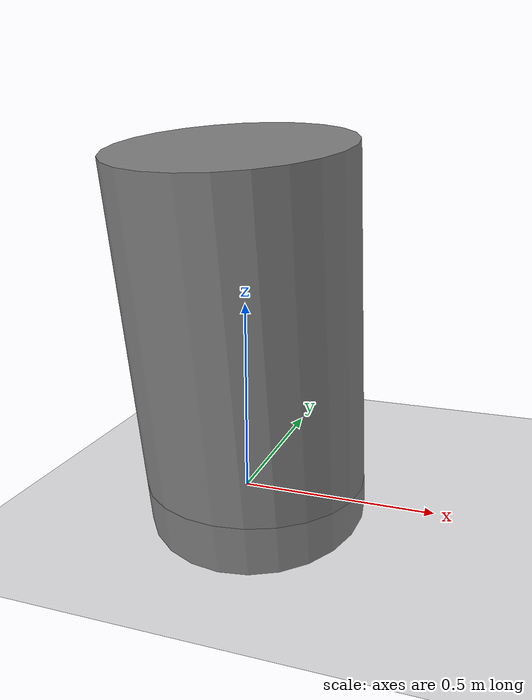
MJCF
<mujoco model="cylinder_plane_tilt10_3">
            <option gravity="0 0 0" timestep="0.001"/>
            <worldbody>
                <geom name="floor" type="plane" size="10 10 0.1"/>
                <body name="cyl" pos="0 0 0.4" euler="10 0 0">
                    <joint type="free"/>
                    <geom type="cylinder" size="0.3 0.5"/>
                </body>
            </worldbody>
        </mujoco>
